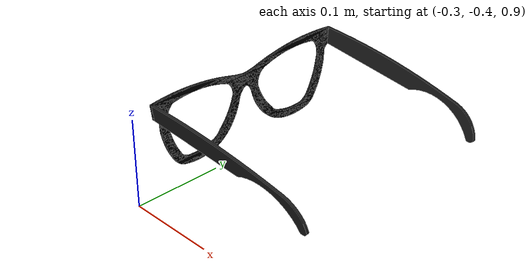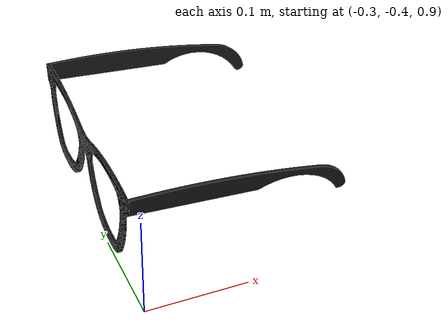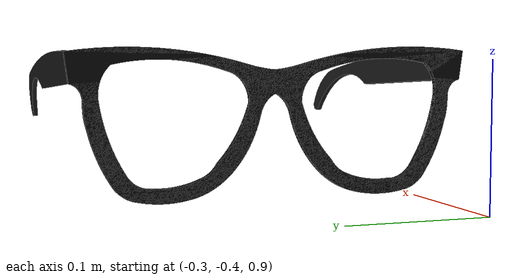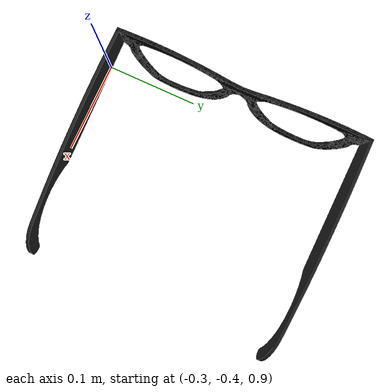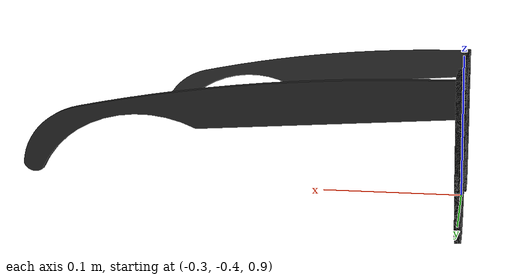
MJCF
<mujoco model="glass">
  <compiler angle="radian" eulerseq="zyx" autolimits="true" />
  <default>
    <default class="glass">
    <mesh scale="0.2 0.2 0.2" />
    <joint limited="true" damping="0.01" armature="0.01" frictionloss="0.01" />
    <motor ctrllimited="true" />
    <equality solref="0.001 2" />
    <default class="glass/visual">
      <geom condim="1" contype="0" conaffinity="0" group="2" />
    </default>
    <default class="glass/collision">
      <geom condim="4" contype="1" conaffinity="14" friction="0.9 0.2 0.2" solref="0.001 2" group="3" />
    </default>
  </default>
  </default>
  <asset>
    <material name="glass_original-2_material_0_0" specular="0.06666666666666667" shininess="0.03" rgba="0.11372549019607843 0.11372549019607843 0.11372549019607843 1" />
    <mesh file="glass/textured_objs_thickness/original-2/original-2.obj" name="glass_original-2" scale="0.2 0.2 0.2"/>
    <material name="glass_original-1_1_material_0_0" specular="0.06666666666666667" shininess="0.03" rgba="0.11372549019607843 0.11372549019607843 0.11372549019607843 1" />
    <material name="glass_original-1_0_material_1_0" specular="0.06666666666666667" shininess="0.03" rgba="0 0 0 1" />
    <mesh file="glass/textured_objs_thickness/original-1/original-1_0.obj" name="glass_original-1_0" scale="0.2 0.2 0.2"/>
    <mesh file="glass/textured_objs_thickness/original-1/original-1_1.obj" name="glass_original-1_1" scale="0.2 0.2 0.2"/>
    <material name="glass_original-3_material_0_0" specular="0.06666666666666667" shininess="0.03" rgba="0.11372549019607843 0.11372549019607843 0.11372549019607843 1" />
    <mesh file="glass/textured_objs_thickness/original-3/original-3.obj" name="glass_original-3" scale="0.2 0.2 0.2"/>
  </asset>
  <worldbody>
    <light directional="true" pos="0 0 0.05" dir="0 0 -1" castshadow="false" />
    <body name="glass" pos="-0.25 -0.25 0.98" quat="0.5 0.5 -0.5 -0.5" childclass="glass">
      <freejoint name="glass_root" />
      <geom pos="0.0 0.0 0.0" quat="1 0 0 0" type="mesh" mesh="glass_original-1_0" material="glass_original-1_0_material_1_0" density="0" class="glass/visual" />
      <geom pos="0.0 0.0 0.0" quat="1 0 0 0" type="mesh" mesh="glass_original-1_1" material="glass_original-1_1_material_0_0" density="0" class="glass/visual" />
      <geom pos="0.0 0.0 0.0" quat="1 0 0 0" type="mesh" mesh="glass_original-1_0" material="glass_original-1_0_material_1_0" mass="0.01" class="glass/collision" />
      <geom pos="0.0 0.0 0.0" quat="1 0 0 0" type="mesh" mesh="glass_original-1_1" material="glass_original-1_1_material_0_0" mass="0.01" class="glass/collision" />
      <body name="link_0" pos="-0.05822870119362571 0.012772445263971878 0.025211727978494827">
        <joint name="glass_joint_0" pos="-0.057 0 0.027" axis="0 -1 0" range="0.2 1.3823007675795087" damping="0.1" type="hinge" limited="true" />
        <geom pos="0.05822870119362571 -0.012772445263971878 -0.025211727978494827" quat="1 0 0 0" type="mesh" mesh="glass_original-3" mass="0.01" material="glass_original-3_material_0_0" density="0" class="glass/visual" />
        <geom pos="0.05822870119362571 -0.012772445263971878 -0.025211727978494827" quat="1 0 0 0" type="mesh" mesh="glass_original-3" mass="0.01" material="glass_original-3_material_0_0" class="glass/collision" />
      </body>
      <body name="link_1" pos="0.06172104681835892 0.012821442256062455 0.025883854335217473">
        <joint name="glass_joint_1" pos="0.062 0 0.027" axis="0 1 0" range="0.2 1.2915436464758039" damping="0.1" type="hinge" limited="true" />
        <geom pos="-0.06172104681835892 -0.012821442256062455 -0.025883854335217473" quat="1 0 0 0" type="mesh" mesh="glass_original-2" material="glass_original-2_material_0_0" density="0" class="glass/visual" />
        <geom pos="-0.06172104681835892 -0.012821442256062455 -0.025883854335217473" quat="1 0 0 0" type="mesh" mesh="glass_original-2" mass="0.01" material="glass_original-2_material_0_0" class="glass/collision" />
      </body>
    </body>
  </worldbody>
  <actuator>
    <motor name="glass_joint_0" joint="glass_joint_0" ctrllimited="true" ctrlrange="-1 1" gear="1" />
    <motor name="glass_joint_1" joint="glass_joint_1" ctrllimited="true" ctrlrange="-1 1" gear="1" />
  </actuator>
</mujoco>
